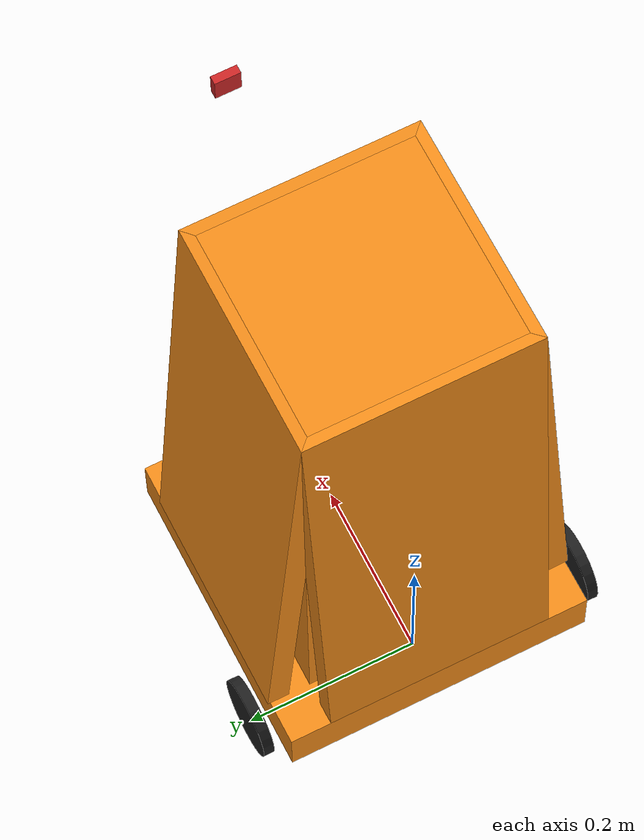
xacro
<?xml version="1.0"?>
<!-- Basic differential drive mobile base -->
<robot xmlns:xacro="http://www.ros.org/wiki/xacro" name="diffdrive_robot">
  <xacro:arg name="prefix" default="" />
  <xacro:arg name="use_mock_hardware" default="false" />

  <!-- Section for my own xacros and code  ______________________________________________________________________________________________________-->

  <!-- Adding my own robot description xacro modelined earlier-->
  <xacro:include filename="bevbot_core.xacro"/>

  <!-- File for lidar and lidar mount -->
  <xacro:include filename="lidar.xacro"/>

  <!-- File for camera -->

    <!-- File for epth camera -->
  <xacro:include filename="depth_camera.xacro"/>

  <!-- Section for my own xacros and code  ______________________________________________________________________________________________________-->

  <!-- This ^ is old demo robot urdf-->

  <!-- Import Rviz colors -->
  <xacro:include filename="$(find ros2_control_demo_description)/diffbot/urdf/diffbot.materials.xacro" />

  <!-- Import diffbot ros2_control description -->
  <xacro:include filename="$(find bevbot_arduino)/ros2_control/diffbot.ros2_control.xacro" />

  <xacro:diffbot prefix="$(arg prefix)" />

  <xacro:diffbot_ros2_control
    name="DiffBot" prefix="$(arg prefix)" use_mock_hardware="$(arg use_mock_hardware)"/>

</robot>

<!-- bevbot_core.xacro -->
<robot xmlns:xacro="http://www.ros.org/wiki/xacro">

  <xacro:macro name="diffbot" params="prefix">

  <!-- Constants for robot dimensions -->
  <xacro:property name="PI" value="3.1415926535897931"/>
  <xacro:property name="base_mass" value=".1" /> <!-- arbitrary value for base mass -->
  <xacro:property name="base_width" value="0.36195" />
  <xacro:property name="base_length" value="0.36195" />
  <xacro:property name="base_height" value=".064" />
  <xacro:property name="base_mass_two" value=".5" /> <!-- arbitrary value for base mass -->
  <xacro:property name="base_width_two" value="0.2667" />
  <xacro:property name="base_length_two" value="0.2667" />
  <xacro:property name="base_height_two" value=".6858" />
  <xacro:property name="base_mass_diag" value=".1" /> <!-- arbitrary value for base mass -->
  <xacro:property name="base_width_diag" value="0.623872" />
  <xacro:property name="base_length_diag" value="0.2667" />
  <xacro:property name="base_height_diag" value="0.0254" />
  <xacro:property name="wheel_mass" value="0.2" /> <!-- arbitrary value for wheel mass -->
  <xacro:property name="wheel_len" value="0.0127" />
  <xacro:property name="wheel_space" value="0.0127" />
  <xacro:property name="wheel_radius" value="0.0460375"  />   <!---"0.0460375"  old value-->
  <xacro:property name="caster_wheel_mass" value="0.1" /> <!-- arbitrary value for caster wheel mass -->
  <xacro:property name="caster_wheel_radius" value="0.0508" />
  <xacro:property name="caster_x" value="0.2159" />
  <xacro:property name="z_offset" value="-${base_height/2}" /> <!-- Space btw top of beam and the each joint -->

  <!-- Base Link =============================================================================================-->

  <link name="${prefix}base_link">
  </link>

 <!-- Base footprint Link =============================================================================================-->

  <joint name="base_footprint_joint" type="fixed">
    <parent link="${prefix}base_link"/>
    <child link="${prefix}base_footprint"/>
    <origin xyz="0 0 0"/>
  </joint>

  <link name="${prefix}base_footprint">
  </link>

  <!-- Chassis link ====================================================================================-->

  <joint name="${prefix}chassis_joint" type="fixed">
    <parent link="${prefix}base_link"/>
    <child link="${prefix}chassis"/>
    <origin xyz="-0.0635 0 0"/>
  </joint>

  <link name="${prefix}chassis">
    <visual>
      <origin xyz="${base_width/2} 0 ${base_height/2}" rpy="0 0 0"/>
      <geometry>
        <box size="${base_width} ${base_length} ${base_height}"/>
      </geometry>
      <material name="orange"/>
    </visual>

    <collision>
      <origin xyz="${base_width/2} 0 ${base_height/2}" rpy="0 0 0"/>
      <geometry>
        <box size="${base_width} ${base_length} ${base_height}"/>
      </geometry>
    </collision>

    <inertial>
      <origin xyz="${base_width/2} 0 ${base_height/2}" rpy="0 0 0"/>
      <mass value="${base_mass}"/>
      <inertia
        ixx="${base_mass / 12.0 * (base_length*base_length + base_height*base_height)}" ixy="0.0" ixz="0.0"
        iyy="${base_mass / 12.0 * (base_height*base_height + base_width*base_width)}" iyz="0.0"
        izz="${base_mass / 12.0 * (base_width*base_width + base_length*base_length)}"/>
      </inertial>
    </link>

    <!-- Chassis link 2 ====================================================================================-->

    <joint name="${prefix}chassis_joint_two" type="fixed">
      <parent link="${prefix}base_link"/>
      <child link="${prefix}chassis_two"/>
      <origin xyz="-0.0127 0 0"/>
    </joint>

    <link name="${prefix}chassis_two">
      <visual>
        <origin xyz="${base_width_two/2} 0 ${base_height_two/2}" rpy="0 0 0"/>
        <geometry>
          <box size="${base_width_two} ${base_length_two} ${base_height_two}"/>
        </geometry>
        <material name="orange"/>
      </visual>

      <collision>
        <origin xyz="${base_width_two/2} 0 ${base_height_two/2}" rpy="0 0 0"/>
        <geometry>
          <box size="${base_width_two} ${base_length_two} ${base_height_two}"/>
        </geometry>
      </collision>

      <inertial>
        <origin xyz="${base_width_two/2} 0 ${base_height_two/2}" rpy="0 0 0"/>
        <mass value="${base_mass_two}"/>
        <inertia
          ixx="${base_mass_two / 12.0 * (base_length_two*base_length_two + base_height_two*base_height_two)}" ixy="0.0" ixz="0.0"
          iyy="${base_mass_two / 12.0 * (base_height_two*base_height_two + base_width_two*base_width_two)}" iyz="0.0"
          izz="${base_mass_two / 12.0 * (base_width_two*base_width_two + base_length_two*base_length_two)}"/>
        </inertial>
      </link>

    <!-- diagonal front ====================================================================================-->

    <joint name="${prefix}diagonal_joint_front" type="fixed">
      <parent link="${prefix}base_link"/>
      <child link="${prefix}diagonal_front"/>
      <origin xyz="${-0.0127 + .13335} 0 0"/>
    </joint>

    <link name="${prefix}diagonal_front">
      <visual>
        <origin xyz="${(base_width_two/2) + .0254 - .0127} 0 ${.3109 + base_height - .000018}" rpy="0 ${.474052*PI} 0"/>
        <geometry>
          <box size="${base_width_diag} ${base_length_diag} ${base_height_diag}"/>
        </geometry>
        <material name="orange"/>
      </visual>

      <collision>
        <origin xyz="${(base_width_two/2) + .0254 - .0127} 0 ${.3109 + base_height - .000018}" rpy="0 ${.474052*PI} 0"/>
        <geometry>
          <box size="${base_width_diag} ${base_length_diag} ${base_height_diag}"/>
        </geometry>
      </collision>

      <inertial>
        <origin xyz="${(base_width_two/2) + .0254 - .0127} 0 ${.3109 + base_height - .000018}" rpy="0 ${.474052*PI} 0"/>
        <mass value="${base_mass_diag}"/>
        <inertia
          ixx="${base_mass_diag / 12.0 * (base_length_diag*base_length_diag + base_height_diag*base_height_diag)}" ixy="0.0" ixz="0.0"
          iyy="${base_mass_diag / 12.0 * (base_height_diag*base_height_diag + base_width_diag*base_width_diag)}" iyz="0.0"
          izz="${base_mass_diag / 12.0 * (base_width_diag*base_width_diag + base_length_diag*base_length_diag)}"/>
        </inertial>
      </link>

    <!-- diagonal back ====================================================================================-->

    <joint name="${prefix}diagonal_joint_back" type="fixed">
      <parent link="${prefix}base_link"/>
      <child link="${prefix}diagonal_back"/>
      <origin xyz="${-0.0127 + .13335} 0 0"/>
    </joint>

    <link name="${prefix}diagonal_back">
      <visual>
        <origin xyz="-${(base_width_two/2) + .0254 - .0127} 0 ${.3109 + base_height - .000018}" rpy="0 -${.474052*PI} 0"/>
        <geometry>
          <box size="${base_width_diag} ${base_length_diag} ${base_height_diag}"/>
        </geometry>
        <material name="orange"/>
      </visual>

      <collision>
        <origin xyz="-${(base_width_two/2) + .0254 - .0127} 0 ${.3109 + base_height - .000018}" rpy="0 -${.474052*PI} 0"/>
        <geometry>
          <box size="${base_width_diag} ${base_length_diag} ${base_height_diag}"/>
        </geometry>
      </collision>

      <inertial>
        <origin xyz="-${(base_width_two/2) + .0254 - .0127} 0 ${.3109 + base_height - .000018}" rpy="0 -${.474052*PI} 0"/>
        <mass value="${base_mass_diag}"/>
        <inertia
          ixx="${base_mass_diag / 12.0 * (base_length_diag*base_length_diag + base_height_diag*base_height_diag)}" ixy="0.0" ixz="0.0"
          iyy="${base_mass_diag / 12.0 * (base_height_diag*base_height_diag + base_width_diag*base_width_diag)}" iyz="0.0"
          izz="${base_mass_diag / 12.0 * (base_width_diag*base_width_diag + base_length_diag*base_length_diag)}"/>
        </inertial>
      </link>

    <!-- diagonal left ====================================================================================-->

    <joint name="${prefix}diagonal_joint_left" type="fixed">
      <parent link="${prefix}base_link"/>
      <child link="${prefix}diagonal_left"/>
      <origin xyz="${-0.0127 + .13335} 0 0"/>
    </joint>

    <link name="${prefix}diagonal_left">
      <visual>
        <origin xyz="0 ${(base_width_two/2) + .0254 - .0127} ${.3109 + base_height - .000018}" rpy="-${.474052*PI} 0 0"/>
        <geometry>
          <box size="${base_length_diag} ${base_width_diag} ${base_height_diag}"/>
        </geometry>
        <material name="orange"/>
      </visual>

      <collision>
        <origin xyz="0 ${(base_width_two/2) + .0254 - .0127} ${.3109 + base_height - .000018}" rpy="-${.474052*PI} 0 0"/>
        <geometry>
          <box size="${base_length_diag} ${base_width_diag} ${base_height_diag}"/>
        </geometry>
      </collision>

      <inertial>
        <origin xyz="0 ${(base_width_two/2) + .0254 - .0127} ${.3109 + base_height - .000018}" rpy="-${.474052*PI} 0 0"/>
        <mass value="${base_mass_diag}"/>
        <inertia
          ixx="${base_mass_diag / 12.0 * (base_length_diag*base_length_diag + base_height_diag*base_height_diag)}" ixy="0.0" ixz="0.0"
          iyy="${base_mass_diag / 12.0 * (base_height_diag*base_height_diag + base_width_diag*base_width_diag)}" iyz="0.0"
          izz="${base_mass_diag / 12.0 * (base_width_diag*base_width_diag + base_length_diag*base_length_diag)}"/>
        </inertial>
      </link>

    <!-- diagonal right ====================================================================================-->

    <joint name="${prefix}diagonal_joint_right" type="fixed">
      <parent link="${prefix}base_link"/>
      <child link="${prefix}diagonal_right"/>
      <origin xyz="${-0.0127 + .13335} 0 0"/>
    </joint>

    <link name="${prefix}diagonal_right">
      <visual>
        <origin xyz="0 -${(base_width_two/2) + .0254 - .0127} ${.3109 + base_height - .000018}" rpy="${.474052*PI} 0 0"/>
        <geometry>
          <box size="${base_length_diag} ${base_width_diag} ${base_height_diag}"/>
        </geometry>
        <material name="orange"/>
      </visual>

      <collision>
        <origin xyz="0 -${(base_width_two/2) + .0254 - .0127} ${.3109 + base_height - .000018}" rpy="${.474052*PI} 0 0"/>
        <geometry>
          <box size="${base_length_diag} ${base_width_diag} ${base_height_diag}"/>
        </geometry>
      </collision>

      <inertial>
        <origin xyz="0 -${(base_width_two/2) + .0254 - .0127} ${.3109 + base_height - .000018}" rpy="${.474052*PI} 0 0"/>
        <mass value="${base_mass_diag}"/>
        <inertia
          ixx="${base_mass_diag / 12.0 * (base_length_diag*base_length_diag + base_height_diag*base_height_diag)}" ixy="0.0" ixz="0.0"
          iyy="${base_mass_diag / 12.0 * (base_height_diag*base_height_diag + base_width_diag*base_width_diag)}" iyz="0.0"
          izz="${base_mass_diag / 12.0 * (base_width_diag*base_width_diag + base_length_diag*base_length_diag)}"/>
        </inertial>
      </link>

      <!-- LEFT wheel Joint/link ===========================================================================-->

      <joint name="${prefix}left_wheel_joint" type="continuous">
        <parent link="${prefix}base_link"/>
        <child link="${prefix}left_wheel"/>
        <origin xyz="0 -${(base_width/2) + (wheel_len/2) + wheel_space} .016" rpy="0 0 0"/>
        <axis xyz="0 1 0"/>
        <dynamics damping="0.2"/>
        <limit effort="100" velocity="1.0"/>
      </joint>

      <link name="${prefix}left_wheel">
        <collision>
          <origin xyz="0 0 0" rpy="${PI/2} 0 0"/>
          <geometry>
            <cylinder length="${wheel_len}" radius="${wheel_radius}"/>
          </geometry>
        </collision>

        <visual>
          <origin xyz="0 0 0" rpy="${PI/2} 0 0"/>
          <geometry>
            <cylinder length="${wheel_len}" radius="${wheel_radius}"/>
          </geometry>
          <material name="black"/>
        </visual>

        <inertial>
          <origin xyz="0 0 0" rpy="${PI/2} 0 0"/>
          <mass value="${wheel_mass}"/>
          <inertia
            ixx="${wheel_mass / 12.0 * (3*wheel_radius*wheel_radius + wheel_len*wheel_len)}" ixy="0.0" ixz="0.0"
            iyy="${wheel_mass / 12.0 * (3*wheel_radius*wheel_radius + wheel_len*wheel_len)}" iyz="0.0"
            izz="${wheel_mass / 2.0 * wheel_radius*wheel_radius}"/>
          </inertial>
        </link>

      <!-- right wheel Joint/Link =========================================================================-->

      <joint name="${prefix}right_wheel_joint" type="continuous">
        <parent link="${prefix}base_link"/>
        <child link="${prefix}right_wheel"/>
        <origin xyz="0 ${(base_width/2) + (wheel_len/2) + wheel_space} .016" rpy="0 0 0"/>
        <axis xyz="0 1 0"/>
        <dynamics damping="0.2"/>
        <limit effort="100" velocity="1.0"/>
      </joint>

      <link name="${prefix}right_wheel">
        <collision>
          <origin xyz="0 0 0" rpy="${PI/2} 0 0"/>
          <geometry>
            <cylinder length="${wheel_len}" radius="${wheel_radius}"/>
          </geometry>
        </collision>

        <visual>
          <origin xyz="0 0 0" rpy="${PI/2} 0 0"/>
          <geometry>
            <cylinder length="${wheel_len}" radius="${wheel_radius}"/>
          </geometry>
          <material name="black"/>
        </visual>

        <inertial>
          <origin xyz="0 0 0" rpy="${PI/2} 0 0"/>
          <mass value="${wheel_mass}"/>
          <inertia
            ixx="${wheel_mass / 12.0 * (3*wheel_radius*wheel_radius + wheel_len*wheel_len)}" ixy="0.0" ixz="0.0"
            iyy="${wheel_mass / 12.0 * (3*wheel_radius*wheel_radius + wheel_len*wheel_len)}" iyz="0.0"
            izz="${wheel_mass / 2.0 * wheel_radius*wheel_radius}"/>
          </inertial>
        </link>

      <!-- Caster wheel Joint/Link =======================================================================-->

      <joint name="${prefix}caster_wheel_joint" type="fixed">
        <parent link="${prefix}base_link"/>
        <child link="${prefix}caster_wheel"/>
        <origin xyz="${caster_x} 0 .016" rpy="0 0 0"/>
      </joint>

      <link name="${prefix}caster_wheel">
        <collision>
          <origin xyz="0 0 0" rpy="0 0 0"/>
          <geometry>
            <sphere radius="${caster_wheel_radius}"/>
          </geometry>
        </collision>

        <visual>
          <origin xyz="0 0 0" rpy="0 0 0"/>
          <geometry>
            <sphere radius="${caster_wheel_radius}"/>
          </geometry>
          <material name="white"/>
        </visual>

        <inertial>
          <origin xyz="0 0 0" rpy="0 0 0"/>
          <mass value="${caster_wheel_mass}"/>
          <inertia
            ixx="${caster_wheel_mass * 0.4 * (caster_wheel_radius * caster_wheel_radius)}" ixy="0.0" ixz="0.0"
            iyy="${caster_wheel_mass * 0.4 * (caster_wheel_radius * caster_wheel_radius)}" iyz="0.0"
            izz="${caster_wheel_mass * 0.4 * (caster_wheel_radius * caster_wheel_radius)}"/>
          </inertial>
        </link>

    <!-- lidar top cover link/joint ====================================================================================-->

    <joint name="${prefix}lidar_cover_top_joint" type="fixed">
      <parent link="${prefix}chassis"/>
      <child link="${prefix}cover_top"/>
      <origin xyz="${0.3683 + .05 + .001} 0 ${.15-.02-.01+.005}"/>
    </joint>

    <link name="${prefix}cover_top">
    <visual>
      <origin xyz="0 0 0" rpy="0 0 0"/>
      <geometry>
        <cylinder radius=".06" length=".01"/>
      </geometry>
      <material name="orange"/>
    </visual>

    <collision>
      <origin xyz="0 0 0" rpy="0 0 0"/>
      <geometry>
        <cylinder radius=".06" length=".01"/>
      </geometry>
    </collision>
    </link>

    <joint name="${prefix}lidar_cover_top_box_joint" type="fixed">
      <parent link="${prefix}cover_top"/>
      <child link="${prefix}cover_top_box"/>
      <origin xyz="-.03 0 0"/>
    </joint>

    <link name="${prefix}cover_top_box">
    <visual>
      <origin xyz="0 0 0" rpy="0 0 0"/>
      <geometry>
        <box size=".06 .12 .01"/>
      </geometry>
      <material name="orange"/>
    </visual>

    <collision>
      <origin xyz="0 0 0" rpy="0 0 0"/>
      <geometry>
        <box size=".06 .06 .01"/>
      </geometry>
    </collision>
    </link>

    <!-- lidar bottom cover link/joint ====================================================================================-->

    <joint name="${prefix}lidar_cover_bottom_joint" type="fixed">
      <parent link="${prefix}chassis"/>
      <child link="${prefix}cover_bottom"/>
      <origin xyz="${0.3683 + .05 + .001} 0 ${.15+.02+.01-.005}"/>
    </joint>

    <link name="${prefix}cover_bottom">
    <visual>
      <origin xyz="0 0 0" rpy="0 0 0"/>
      <geometry>
        <cylinder radius=".06" length=".01"/>
      </geometry>
      <material name="orange"/>
    </visual>

    <collision>
      <origin xyz="0 0 0" rpy="0 0 0"/>
      <geometry>
        <cylinder radius=".06" length=".01"/>
      </geometry>
    </collision>
    </link>

    <joint name="${prefix}lidar_cover_bottom_box_joint" type="fixed">
      <parent link="${prefix}cover_bottom"/>
      <child link="${prefix}cover_bottom_box"/>
      <origin xyz="-.03 0 0"/>
    </joint>

    <link name="${prefix}cover_bottom_box">
    <visual>
      <origin xyz="0 0 0" rpy="0 0 0"/>
      <geometry>
        <box size=".06 .12 .01"/>
      </geometry>
      <material name="orange"/>
    </visual>

    <collision>
      <origin xyz="0 0 0" rpy="0 0 0"/>
      <geometry>
        <box size=".06 .06 .01"/>
      </geometry>
    </collision>
    </link>

  </xacro:macro>

</robot>

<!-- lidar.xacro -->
<robot xmlns:xacro="http://www.ros.org/wiki/xacro" >

  <xacro:property name="lidar_rad" value=".05" />
  <xacro:property name="lidar_len" value=".04" />

    <joint name="laser_joint" type="fixed">
        <parent link="chassis"/>
        <child link="laser_frame"/>
        <origin xyz="${0.3683 + .05 + .001} 0 0.15" rpy="0 0 0"/>
    </joint>

    <link name="laser_frame">
        <visual>
            <geometry>
                <cylinder radius="${lidar_rad}" length="${lidar_len}"/>
            </geometry>
            <material name="red"/>
        </visual>
        <collision>
            <geometry>
                <cylinder radius="${lidar_rad}" length="${lidar_len}"/>
            </geometry>
        </collision>
    </link>

    <gazebo reference="laser_frame">
        <material>Gazebo/Red</material>
        <sensor name="laser" type="ray">
            <pose> 0 0 0 0 0 0 </pose>
            <visualize>true</visualize>
            <update_rate>10</update_rate>
            <ray>
                <scan>
                    <horizontal>
                        <samples>360</samples>
                        <min_angle>-3.14/2</min_angle>
                        <max_angle>3.14/2</max_angle>
                    </horizontal>
                </scan>
                <range>
                    <min>0.3</min>
                    <max>12</max>
                </range>
            </ray>
            <plugin name="laser_controller" filename="libgazebo_ros_ray_sensor.so">
                <ros>
                    <argument>~/out:=scan</argument>
                </ros>
                <output_type>sensor_msgs/LaserScan</output_type>
                <frame_name>laser_frame</frame_name>
            </plugin>
        </sensor>

    </gazebo>

</robot>

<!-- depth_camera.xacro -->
<robot xmlns:xacro="http://www.ros.org/wiki/xacro" >

    <joint name="camera_joint" type="fixed">
        <parent link="chassis"/>
        <child link="camera_link"/>
        <origin xyz="${.4826 + .005} 0 .6" rpy="0 0 0"/>
    </joint>

    <link name="camera_link">
        <visual>
            <geometry>
                <box size="0.01 .03 .03" length="0.04"/>
            </geometry>
            <material name="red"/>
        </visual>
    </link>

    <joint name="camera_optical_joint" type="fixed">
        <parent link="camera_link"/>
        <child link="camera_link_optical"/>
        <origin xyz="0 0 0" rpy="${-pi/2} 0 ${-pi/2}"/>
    </joint>

    <link name="camera_link_optical"></link>

    <gazebo reference="camera_link">
        <material>Gazebo/Red</material>
        <sensor name="camera" type="depth">
            <pose> 0 0 0 0 0 0 </pose>
            <visualize>true</visualize>
            <update_rate>10</update_rate>
            <camera>
                <horizontal_fov>1.089</horizontal_fov>
                <image>
                    <format>R8G8B8</format>
                    <width>640</width>
                    <height>480</height>
                </image>
                <clip>
                    <near>0.05</near>
                    <far>8.0</far>
                </clip>
            </camera>
            <plugin name="camera_controller" filename="libgazebo_ros_camera.so">
                <frame_name>camera_link_optical</frame_name>
            </plugin>
        </sensor>

    </gazebo>

</robot>
